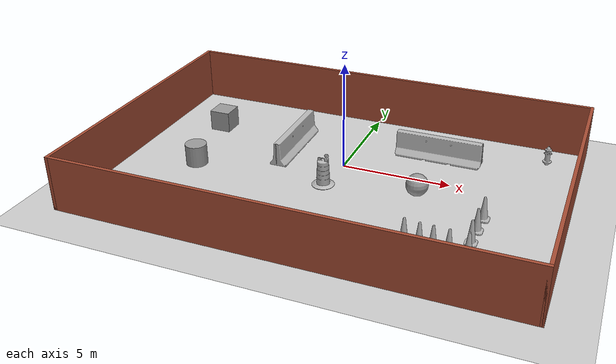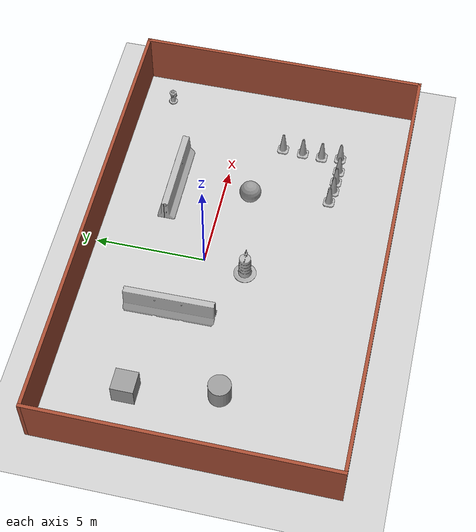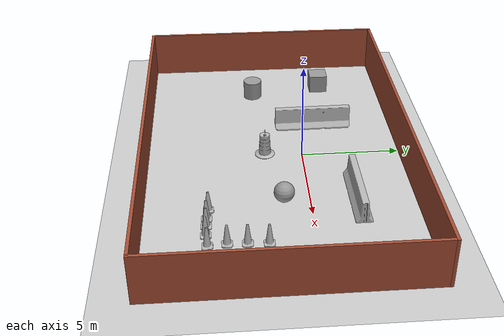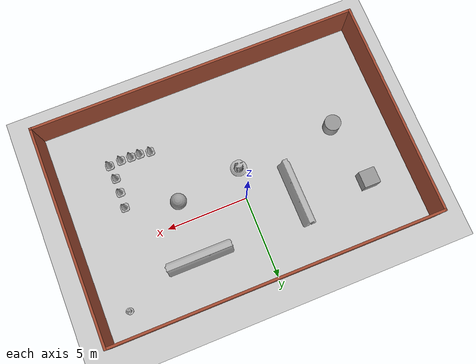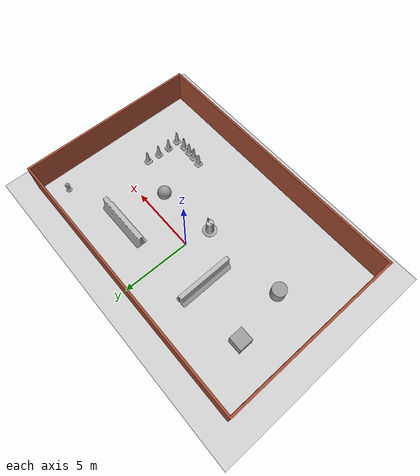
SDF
<sdf version="1.6">
 <world name="default">
  <light name="sun" type="directional">
   <pose>0 0 10 0 -0 0</pose>
   <diffuse>0.8 0.8 0.8 1</diffuse>
   <specular>0.2 0.2 0.2 1</specular>
   <attenuation>
    <range>1000</range>
    <constant>0.9</constant>
    <linear>0.01</linear>
    <quadratic>0.001</quadratic>
   </attenuation>
   <direction>-0.5 0.1 -0.9</direction>
  </light>
  <model name="ground_plane">
   <static>1</static>
   <link name="link">
    <collision name="collision">
     <geometry><plane><normal>0 0 1</normal><size>100 100</size></plane></geometry>
     <surface>
      <contact><collide_bitmask>65535</collide_bitmask></contact>
      <friction><ode><mu>100</mu><mu2>50</mu2></ode></friction>
     </surface>
    </collision>
    <visual name="visual">
     <cast_shadows>0</cast_shadows>
     <geometry><plane><normal>0 0 1</normal><size>100 100</size></plane></geometry>
     <material>
      <script><uri>file://media/materials/scripts/gazebo.material</uri><name>Gazebo/Grey</name></script>
     </material>
    </visual>
   </link>
  </model>
  <gravity>0 0 -9.8</gravity>
  <magnetic_field>6e-06 2.3e-05 -4.2e-05</magnetic_field>
  <atmosphere type="adiabatic"/>
  <physics name="default_physics" default="0" type="ode">
   <max_step_size>0.001</max_step_size>
   <real_time_factor>1</real_time_factor>
   <real_time_update_rate>1000</real_time_update_rate>
  </physics>
  <scene><ambient>0.4 0.4 0.4 1</ambient><background>0.7 0.7 0.7 1</background><shadows>1</shadows></scene>
  <spherical_coordinates>
   <surface_model>EARTH_WGS84</surface_model>
   <latitude_deg>0</latitude_deg>
   <longitude_deg>0</longitude_deg>
   <elevation>0</elevation>
   <heading_deg>0</heading_deg>
  </spherical_coordinates>
  <model name="Brick_Walls">
   <pose>0.185117 -1.4251 0 0 -0 0</pose>
   <link name="Wall_24">
    <collision name="Wall_24_Collision">
     <geometry><box><size>13.25 0.15 2.5</size></box></geometry>
     <pose>0 0 1.25 0 -0 0</pose>
    </collision>
    <visual name="Wall_24_Visual">
     <pose>0 0 1.25 0 -0 0</pose>
     <geometry><box><size>13.25 0.15 2.5</size></box></geometry>
     <material>
      <script><uri>file://media/materials/scripts/gazebo.material</uri><name>Gazebo/Bricks</name></script>
      <ambient>1 1 1 1</ambient>
     </material>
     <meta><layer>0</layer></meta>
    </visual>
    <pose>-10.05 0 0 0 -0 -1.5708</pose>
   </link>
   <link name="Wall_26">
    <collision name="Wall_26_Collision">
     <geometry><box><size>13.25 0.15 2.5</size></box></geometry>
     <pose>0 0 1.25 0 -0 0</pose>
    </collision>
    <visual name="Wall_26_Visual">
     <pose>0 0 1.25 0 -0 0</pose>
     <geometry><box><size>13.25 0.15 2.5</size></box></geometry>
     <material>
      <script><uri>file://media/materials/scripts/gazebo.material</uri><name>Gazebo/Bricks</name></script>
      <ambient>1 1 1 1</ambient>
     </material>
     <meta><layer>0</layer></meta>
    </visual>
    <pose>10.05 0 0 0 -0 1.5708</pose>
   </link>
   <link name="Wall_27">
    <collision name="Wall_27_Collision">
     <geometry><box><size>20.25 0.15 2.5</size></box></geometry>
     <pose>0 0 1.25 0 -0 0</pose>
    </collision>
    <visual name="Wall_27_Visual">
     <pose>0 0 1.25 0 -0 0</pose>
     <geometry><box><size>20.25 0.15 2.5</size></box></geometry>
     <material>
      <script><uri>file://media/materials/scripts/gazebo.material</uri><name>Gazebo/Bricks</name></script>
      <ambient>1 1 1 1</ambient>
     </material>
     <meta><layer>0</layer></meta>
    </visual>
    <pose>-0 6.55 0 0 -0 3.14159</pose>
   </link>
   <link name="Wall_30">
    <collision name="Wall_30_Collision">
     <geometry><box><size>20.25 0.15 2.5</size></box></geometry>
     <pose>0 0 1.25 0 -0 0</pose>
    </collision>
    <visual name="Wall_30_Visual">
     <pose>0 0 1.25 0 -0 0</pose>
     <geometry><box><size>20.25 0.15 2.5</size></box></geometry>
     <material>
      <script><uri>file://media/materials/scripts/gazebo.material</uri><name>Gazebo/Bricks</name></script>
      <ambient>1 1 1 1</ambient>
     </material>
     <meta><layer>0</layer></meta>
    </visual>
    <pose>-0 -6.55 0 0 -0 0</pose>
   </link>
   <static>1</static>
  </model>
  <model name="unit_box">
   <pose>-7.14108 1.66744 0.499995 -1e-05 -0 0</pose>
   <link name="link">
    <inertial>
     <mass>1</mass>
     <inertia>
      <ixx>0.166667</ixx>
      <ixy>0</ixy>
      <ixz>0</ixz>
      <iyy>0.166667</iyy>
      <iyz>0</iyz>
      <izz>0.166667</izz>
     </inertia>
    </inertial>
    <collision name="collision"><geometry><box><size>1 1 1</size></box></geometry></collision>
    <visual name="visual">
     <geometry><box><size>1 1 1</size></box></geometry>
     <material>
      <script><name>Gazebo/Grey</name><uri>file://media/materials/scripts/gazebo.material</uri></script>
     </material>
    </visual>
   </link>
  </model>
  <model name="unit_cylinder">
   <pose>-6.4875 -2.21607 0.499997 3e-06 4e-06 -0</pose>
   <link name="link">
    <inertial>
     <mass>1</mass>
     <inertia><ixx>0.145833</ixx><ixy>0</ixy><ixz>0</ixz><iyy>0.145833</iyy><iyz>0</iyz><izz>0.125</izz></inertia>
    </inertial>
    <collision name="collision">
     <geometry><cylinder><radius>0.5</radius><length>1</length></cylinder></geometry>
    </collision>
    <visual name="visual">
     <geometry><cylinder><radius>0.5</radius><length>1</length></cylinder></geometry>
     <material>
      <script><name>Gazebo/Grey</name><uri>file://media/materials/scripts/gazebo.material</uri></script>
     </material>
    </visual>
   </link>
  </model>
  <model name="Construction Cone">
   <link name="link">
    <collision name="collision">
     <geometry>
      <mesh><scale>10 10 10</scale><uri>model://construction_cone/meshes/construction_cone.dae</uri></mesh>
     </geometry>
    </collision>
    <visual name="visual">
     <geometry>
      <mesh><scale>10 10 10</scale><uri>model://construction_cone/meshes/construction_cone.dae</uri></mesh>
     </geometry>
    </visual>
    <inertial>
     <inertia><ixx>1</ixx><ixy>0</ixy><ixz>0</ixz><iyy>1</iyy><iyz>0</iyz><izz>1</izz></inertia>
     <mass>1</mass>
    </inertial>
   </link>
   <pose>6.9789 -2.18499 0 0 -0 0</pose>
  </model>
  <model name="Construction Cone_0">
   <link name="link">
    <collision name="collision">
     <geometry>
      <mesh><scale>10 10 10</scale><uri>model://construction_cone/meshes/construction_cone.dae</uri></mesh>
     </geometry>
    </collision>
    <visual name="visual">
     <geometry>
      <mesh><scale>10 10 10</scale><uri>model://construction_cone/meshes/construction_cone.dae</uri></mesh>
     </geometry>
    </visual>
    <inertial>
     <inertia><ixx>1</ixx><ixy>0</ixy><ixz>0</ixz><iyy>1</iyy><iyz>0</iyz><izz>1</izz></inertia>
     <mass>1</mass>
    </inertial>
   </link>
   <pose>6.921 -3.14558 0 0 -0 0</pose>
  </model>
  <model name="Construction Cone_1">
   <link name="link">
    <collision name="collision">
     <geometry>
      <mesh><scale>10 10 10</scale><uri>model://construction_cone/meshes/construction_cone.dae</uri></mesh>
     </geometry>
    </collision>
    <visual name="visual">
     <geometry>
      <mesh><scale>10 10 10</scale><uri>model://construction_cone/meshes/construction_cone.dae</uri></mesh>
     </geometry>
    </visual>
    <inertial>
     <inertia><ixx>1</ixx><ixy>0</ixy><ixz>0</ixz><iyy>1</iyy><iyz>0</iyz><izz>1</izz></inertia>
     <mass>1</mass>
    </inertial>
   </link>
   <pose>6.89407 -4.06062 0 0 -0 0</pose>
  </model>
  <model name="Construction Cone_2">
   <link name="link">
    <collision name="collision">
     <geometry>
      <mesh><scale>10 10 10</scale><uri>model://construction_cone/meshes/construction_cone.dae</uri></mesh>
     </geometry>
    </collision>
    <visual name="visual">
     <geometry>
      <mesh><scale>10 10 10</scale><uri>model://construction_cone/meshes/construction_cone.dae</uri></mesh>
     </geometry>
    </visual>
    <inertial>
     <inertia><ixx>1</ixx><ixy>0</ixy><ixz>0</ixz><iyy>1</iyy><iyz>0</iyz><izz>1</izz></inertia>
     <mass>1</mass>
    </inertial>
   </link>
   <pose>6.97857 -4.94006 0 0 -0 0</pose>
  </model>
  <model name="Construction Cone_3">
   <link name="link">
    <collision name="collision">
     <geometry>
      <mesh><scale>10 10 10</scale><uri>model://construction_cone/meshes/construction_cone.dae</uri></mesh>
     </geometry>
    </collision>
    <visual name="visual">
     <geometry>
      <mesh><scale>10 10 10</scale><uri>model://construction_cone/meshes/construction_cone.dae</uri></mesh>
     </geometry>
    </visual>
    <inertial>
     <inertia><ixx>1</ixx><ixy>0</ixy><ixz>0</ixz><iyy>1</iyy><iyz>0</iyz><izz>1</izz></inertia>
     <mass>1</mass>
    </inertial>
   </link>
   <pose>6.22754 -5.00267 0 0 -0 0</pose>
  </model>
  <model name="Construction Cone_4">
   <link name="link">
    <collision name="collision">
     <geometry>
      <mesh><scale>10 10 10</scale><uri>model://construction_cone/meshes/construction_cone.dae</uri></mesh>
     </geometry>
    </collision>
    <visual name="visual">
     <geometry>
      <mesh><scale>10 10 10</scale><uri>model://construction_cone/meshes/construction_cone.dae</uri></mesh>
     </geometry>
    </visual>
    <inertial>
     <inertia><ixx>1</ixx><ixy>0</ixy><ixz>0</ixz><iyy>1</iyy><iyz>0</iyz><izz>1</izz></inertia>
     <mass>1</mass>
    </inertial>
   </link>
   <pose>5.58875 -4.97673 0 0 -0 0</pose>
  </model>
  <model name="Construction Cone_5">
   <link name="link">
    <collision name="collision">
     <geometry>
      <mesh><scale>10 10 10</scale><uri>model://construction_cone/meshes/construction_cone.dae</uri></mesh>
     </geometry>
    </collision>
    <visual name="visual">
     <geometry>
      <mesh><scale>10 10 10</scale><uri>model://construction_cone/meshes/construction_cone.dae</uri></mesh>
     </geometry>
    </visual>
    <inertial>
     <inertia><ixx>1</ixx><ixy>0</ixy><ixz>0</ixz><iyy>1</iyy><iyz>0</iyz><izz>1</izz></inertia>
     <mass>1</mass>
    </inertial>
   </link>
   <pose>5.03327 -4.95817 0 0 -0 0</pose>
  </model>
  <model name="Construction Cone_6">
   <link name="link">
    <collision name="collision">
     <geometry>
      <mesh><scale>10 10 10</scale><uri>model://construction_cone/meshes/construction_cone.dae</uri></mesh>
     </geometry>
    </collision>
    <visual name="visual">
     <geometry>
      <mesh><scale>10 10 10</scale><uri>model://construction_cone/meshes/construction_cone.dae</uri></mesh>
     </geometry>
    </visual>
    <inertial>
     <inertia><ixx>1</ixx><ixy>0</ixy><ixz>0</ixz><iyy>1</iyy><iyz>0</iyz><izz>1</izz></inertia>
     <mass>1</mass>
    </inertial>
   </link>
   <pose>4.38424 -4.86742 0 0 -0 0</pose>
  </model>
  <model name="jersey_barrier">
   <static>1</static>
   <link name="link">
    <visual name="visual">
     <geometry><mesh><uri>model://jersey_barrier/meshes/jersey_barrier.dae</uri></mesh></geometry>
    </visual>
    <collision name="upright">
     <pose>0 0 0.5715 0 -0 0</pose>
     <geometry><box><size>4.06542 0.3063 1.143</size></box></geometry>
    </collision>
    <collision name="base">
     <pose>0 0 0.032258 0 -0 0</pose>
     <geometry><box><size>4.06542 0.8107 0.064516</size></box></geometry>
    </collision>
    <collision name="base2">
     <pose>0 0 0.1 0 -0 0</pose>
     <geometry><box><size>4.06542 0.65 0.1</size></box></geometry>
    </collision>
    <collision name="base3">
     <pose>0 0 0.2 0 -0 0</pose>
     <geometry><box><size>4.06542 0.5 0.1</size></box></geometry>
    </collision>
    <collision name="left-angle">
     <pose>0 -0.224 0.2401 0.9 -0 0</pose>
     <geometry><box><size>4.06542 0.5 0.064516</size></box></geometry>
    </collision>
    <collision name="right-angle">
     <pose>0 0.224 0.2401 -0.9 0 0</pose>
     <geometry><box><size>4.06542 0.5 0.064516</size></box></geometry>
    </collision>
   </link>
   <pose>3.87018 2.27187 0 0 -0 0</pose>
  </model>
  <model name="jersey_barrier_0">
   <static>1</static>
   <link name="link">
    <visual name="visual">
     <geometry><mesh><uri>model://jersey_barrier/meshes/jersey_barrier.dae</uri></mesh></geometry>
    </visual>
    <collision name="upright">
     <pose>0 0 0.5715 0 -0 0</pose>
     <geometry><box><size>4.06542 0.3063 1.143</size></box></geometry>
    </collision>
    <collision name="base">
     <pose>0 0 0.032258 0 -0 0</pose>
     <geometry><box><size>4.06542 0.8107 0.064516</size></box></geometry>
    </collision>
    <collision name="base2">
     <pose>0 0 0.1 0 -0 0</pose>
     <geometry><box><size>4.06542 0.65 0.1</size></box></geometry>
    </collision>
    <collision name="base3">
     <pose>0 0 0.2 0 -0 0</pose>
     <geometry><box><size>4.06542 0.5 0.1</size></box></geometry>
    </collision>
    <collision name="left-angle">
     <pose>0 -0.224 0.2401 0.9 -0 0</pose>
     <geometry><box><size>4.06542 0.5 0.064516</size></box></geometry>
    </collision>
    <collision name="right-angle">
     <pose>0 0.224 0.2401 -0.9 0 0</pose>
     <geometry><box><size>4.06542 0.5 0.064516</size></box></geometry>
    </collision>
   </link>
   <pose>-2.88525 0.864781 0 0 0 -1.56046</pose>
  </model>
  <model name="fire_hydrant">
   <static>1</static>
   <link name="link">
    <collision name="collision">
     <geometry><mesh><uri>model://fire_hydrant/meshes/fire_hydrant.dae</uri></mesh></geometry>
    </collision>
    <visual name="visual">
     <geometry><mesh><uri>model://fire_hydrant/meshes/fire_hydrant.dae</uri></mesh></geometry>
    </visual>
   </link>
   <pose>8.68652 3.64148 0 0 -0 0</pose>
  </model>
  <model name="unit_sphere">
   <pose>3.85421 -1.25995 0.5 0 -0 0</pose>
   <link name="link">
    <inertial>
     <mass>1</mass>
     <inertia><ixx>0.1</ixx><ixy>0</ixy><ixz>0</ixz><iyy>0.1</iyy><iyz>0</iyz><izz>0.1</izz></inertia>
    </inertial>
    <collision name="collision"><geometry><sphere><radius>0.5</radius></sphere></geometry></collision>
    <visual name="visual">
     <geometry><sphere><radius>0.5</radius></sphere></geometry>
     <material>
      <script><name>Gazebo/Grey</name><uri>file://media/materials/scripts/gazebo.material</uri></script>
     </material>
    </visual>
   </link>
  </model>
  <model name="Construction Barrel_0">
   <link name="link">
    <inertial>
     <pose>0 0 0.4 0 -0 0</pose>
     <mass>500</mass>
     <inertia><ixx>51.2096</ixx><iyy>51.2096</iyy><izz>25</izz><ixy>0</ixy><ixz>0</ixz><iyz>0</iyz></inertia>
    </inertial>
    <collision name="collision">
     <geometry><mesh><uri>model://construction_barrel/meshes/construction_barrel.dae</uri></mesh></geometry>
    </collision>
    <visual name="visual">
     <geometry><mesh><uri>model://construction_barrel/meshes/construction_barrel.dae</uri></mesh></geometry>
    </visual>
   </link>
   <pose>-0.259947 -1.91411 0 0 -0 0</pose>
  </model>
 </world>
</sdf>
